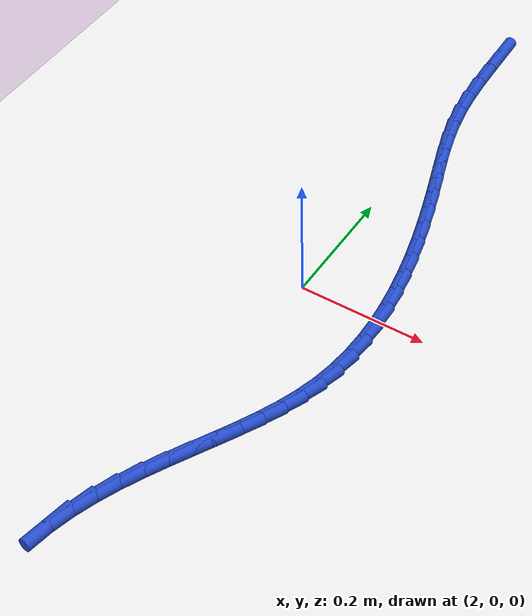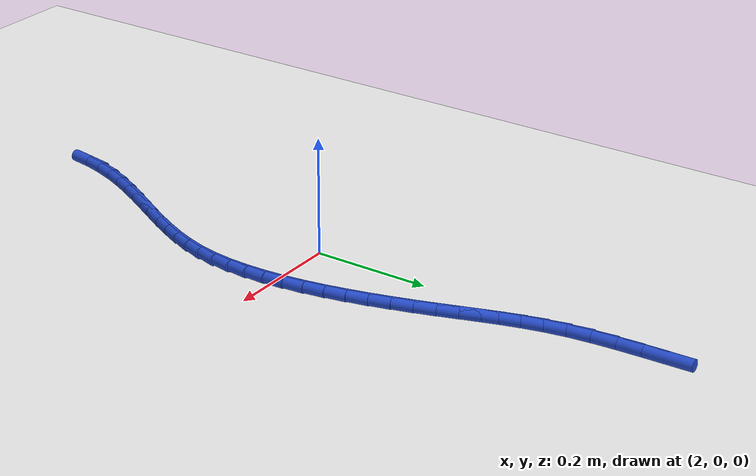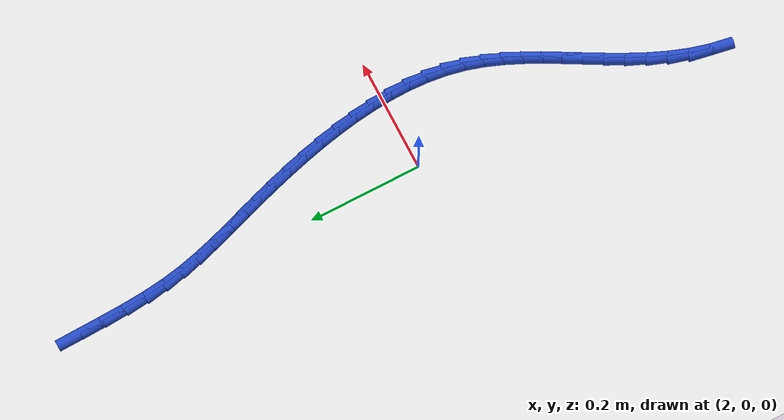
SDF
<sdf version="1.6">
 <world name="default">
  <model name="ground_plane">
   <static>1</static>
   <link name="link">
    <collision name="collision">
     <geometry><plane><normal>0 0 1</normal><size>100 100</size></plane></geometry>
     <surface><friction><ode><mu>100</mu><mu2>50</mu2></ode></friction></surface>
    </collision>
    <visual name="visual">
     <cast_shadows>0</cast_shadows>
     <geometry><plane><normal>0 0 1</normal><size>100 100</size></plane></geometry>
     <material>
      <script><uri>file://media/materials/scripts/gazebo.material</uri><name>Gazebo/WhiteGlow</name></script>
     </material>
    </visual>
   </link>
  </model>
  <model name="line">
   <link name="link_89">
    <pose>2.0033191513486885 0.6238732817404853 0.01 0 1.57 -1.5410313327814171</pose>
    <collision name="collision">
     <geometry><cylinder><radius>0.01</radius><length>0.08</length></cylinder></geometry>
    </collision>
    <visual name="visual">
     <material>
      <script><name>Gazebo/Blue</name><uri>file://media/materials/scripts/gazebo.material</uri></script>
     </material>
     <geometry><cylinder><radius>0.01</radius><length>0.08</length></cylinder></geometry>
    </visual>
   </link>
   <link name="link_90">
    <pose>2.0045568049236273 0.5823047179755485 0.01 0 1.57 -1.5300464621870478</pose>
    <collision name="collision">
     <geometry><cylinder><radius>0.01</radius><length>0.08</length></cylinder></geometry>
    </collision>
    <visual name="visual">
     <material>
      <script><name>Gazebo/Blue</name><uri>file://media/materials/scripts/gazebo.material</uri></script>
     </material>
     <geometry><cylinder><radius>0.01</radius><length>0.08</length></cylinder></geometry>
    </visual>
   </link>
   <link name="link_91">
    <pose>2.0062380553701327 0.5410697406652095 0.01 0 1.57 -1.5020206234922826</pose>
    <collision name="collision">
     <geometry><cylinder><radius>0.01</radius><length>0.08</length></cylinder></geometry>
    </collision>
    <visual name="visual">
     <material>
      <script><name>Gazebo/Blue</name><uri>file://media/materials/scripts/gazebo.material</uri></script>
     </material>
     <geometry><cylinder><radius>0.01</radius><length>0.08</length></cylinder></geometry>
    </visual>
   </link>
   <link name="link_92">
    <pose>2.008999480562623 0.500981893506523 0.01 0 1.57 -1.4539474165723336</pose>
    <collision name="collision">
     <geometry><cylinder><radius>0.01</radius><length>0.08</length></cylinder></geometry>
    </collision>
    <visual name="visual">
     <material>
      <script><name>Gazebo/Blue</name><uri>file://media/materials/scripts/gazebo.material</uri></script>
     </material>
     <geometry><cylinder><radius>0.01</radius><length>0.08</length></cylinder></geometry>
    </visual>
   </link>
   <link name="link_93">
    <pose>2.013475353188538 0.4628515989381514 0.01 0 1.57 -1.3910265826286867</pose>
    <collision name="collision">
     <geometry><cylinder><radius>0.01</radius><length>0.08</length></cylinder></geometry>
    </collision>
    <visual name="visual">
     <material>
      <script><name>Gazebo/Blue</name><uri>file://media/materials/scripts/gazebo.material</uri></script>
     </material>
     <geometry><cylinder><radius>0.01</radius><length>0.08</length></cylinder></geometry>
    </visual>
   </link>
   <link name="link_94">
    <pose>2.019980428911793 0.4270566484668012 0.01 0 1.57 -1.3336770683223065</pose>
    <collision name="collision">
     <geometry><cylinder><radius>0.01</radius><length>0.08</length></cylinder></geometry>
    </collision>
    <visual name="visual">
     <material>
      <script><name>Gazebo/Blue</name><uri>file://media/materials/scripts/gazebo.material</uri></script>
     </material>
     <geometry><cylinder><radius>0.01</radius><length>0.08</length></cylinder></geometry>
    </visual>
   </link>
   <link name="link_95">
    <pose>2.0281857879008784 0.393103287143242 0.01 0 1.57 -1.2881586921767574</pose>
    <collision name="collision">
     <geometry><cylinder><radius>0.01</radius><length>0.08</length></cylinder></geometry>
    </collision>
    <visual name="visual">
     <material>
      <script><name>Gazebo/Blue</name><uri>file://media/materials/scripts/gazebo.material</uri></script>
     </material>
     <geometry><cylinder><radius>0.01</radius><length>0.08</length></cylinder></geometry>
    </visual>
   </link>
   <link name="link_96">
    <pose>2.0376852229975144 0.3603931117968773 0.01 0 1.57 -1.2575223088086525</pose>
    <collision name="collision">
     <geometry><cylinder><radius>0.01</radius><length>0.08</length></cylinder></geometry>
    </collision>
    <visual name="visual">
     <material>
      <script><name>Gazebo/Blue</name><uri>file://media/materials/scripts/gazebo.material</uri></script>
     </material>
     <geometry><cylinder><radius>0.01</radius><length>0.08</length></cylinder></geometry>
    </visual>
   </link>
   <link name="link_97">
    <pose>2.0480725270434226 0.3283277192571086 0.01 0 1.57 -1.2435477769771517</pose>
    <collision name="collision">
     <geometry><cylinder><radius>0.01</radius><length>0.08</length></cylinder></geometry>
    </collision>
    <visual name="visual">
     <material>
      <script><name>Gazebo/Blue</name><uri>file://media/materials/scripts/gazebo.material</uri></script>
     </material>
     <geometry><cylinder><radius>0.01</radius><length>0.08</length></cylinder></geometry>
    </visual>
   </link>
   <link name="link_98">
    <pose>2.058941492880323 0.29630870635333795 0.01 0 1.57 -1.2464422121951575</pose>
    <collision name="collision">
     <geometry><cylinder><radius>0.01</radius><length>0.08</length></cylinder></geometry>
    </collision>
    <visual name="visual">
     <material>
      <script><name>Gazebo/Blue</name><uri>file://media/materials/scripts/gazebo.material</uri></script>
     </material>
     <geometry><cylinder><radius>0.01</radius><length>0.08</length></cylinder></geometry>
    </visual>
   </link>
   <link name="link_99">
    <pose>2.0698888406484826 0.2637494755197809 0.01 0 1.57 -1.2601883920657848</pose>
    <collision name="collision">
     <geometry><cylinder><radius>0.01</radius><length>0.08</length></cylinder></geometry>
    </collision>
    <visual name="visual">
     <material>
      <script><name>Gazebo/Blue</name><uri>file://media/materials/scripts/gazebo.material</uri></script>
     </material>
     <geometry><cylinder><radius>0.01</radius><length>0.08</length></cylinder></geometry>
    </visual>
   </link>
   <link name="link_100">
    <pose>2.0805944008312887 0.23039860780381244 0.01 0 1.57 -1.278507776061584</pose>
    <collision name="collision">
     <geometry><cylinder><radius>0.01</radius><length>0.08</length></cylinder></geometry>
    </collision>
    <visual name="visual">
     <material>
      <script><name>Gazebo/Blue</name><uri>file://media/materials/scripts/gazebo.material</uri></script>
     </material>
     <geometry><cylinder><radius>0.01</radius><length>0.08</length></cylinder></geometry>
    </visual>
   </link>
   <link name="link_101">
    <pose>2.090830960898861 0.19637957373977924 0.01 0 1.57 -1.3012015273214301</pose>
    <collision name="collision">
     <geometry><cylinder><radius>0.01</radius><length>0.08</length></cylinder></geometry>
    </collision>
    <visual name="visual">
     <material>
      <script><name>Gazebo/Blue</name><uri>file://media/materials/scripts/gazebo.material</uri></script>
     </material>
     <geometry><cylinder><radius>0.01</radius><length>0.08</length></cylinder></geometry>
    </visual>
   </link>
   <link name="link_102">
    <pose>2.1003762126913124 0.16183562286753214 0.01 0 1.57 -1.3285080479199194</pose>
    <collision name="collision">
     <geometry><cylinder><radius>0.01</radius><length>0.08</length></cylinder></geometry>
    </collision>
    <visual name="visual">
     <material>
      <script><name>Gazebo/Blue</name><uri>file://media/materials/scripts/gazebo.material</uri></script>
     </material>
     <geometry><cylinder><radius>0.01</radius><length>0.08</length></cylinder></geometry>
    </visual>
   </link>
   <link name="link_103">
    <pose>2.1090078480487584 0.1269100047269208 0.01 0 1.57 -1.3607755931710928</pose>
    <collision name="collision">
     <geometry><cylinder><radius>0.01</radius><length>0.08</length></cylinder></geometry>
    </collision>
    <visual name="visual">
     <material>
      <script><name>Gazebo/Blue</name><uri>file://media/materials/scripts/gazebo.material</uri></script>
     </material>
     <geometry><cylinder><radius>0.01</radius><length>0.08</length></cylinder></geometry>
    </visual>
   </link>
   <link name="link_104">
    <pose>2.1165035588113135 0.09174596885779523 0.01 0 1.57 -1.3984556903592302</pose>
    <collision name="collision">
     <geometry><cylinder><radius>0.01</radius><length>0.08</length></cylinder></geometry>
    </collision>
    <visual name="visual">
     <material>
      <script><name>Gazebo/Blue</name><uri>file://media/materials/scripts/gazebo.material</uri></script>
     </material>
     <geometry><cylinder><radius>0.01</radius><length>0.08</length></cylinder></geometry>
    </visual>
   </link>
   <link name="link_105">
    <pose>2.1226410368190924 0.05648676480000553 0.01 0 1.57 -1.4420941394391793</pose>
    <collision name="collision">
     <geometry><cylinder><radius>0.01</radius><length>0.08</length></cylinder></geometry>
    </collision>
    <visual name="visual">
     <material>
      <script><name>Gazebo/Blue</name><uri>file://media/materials/scripts/gazebo.material</uri></script>
     </material>
     <geometry><cylinder><radius>0.01</radius><length>0.08</length></cylinder></geometry>
    </visual>
   </link>
   <link name="link_106">
    <pose>2.12719797391221 0.021275642093400826 0.01 0 1.57 -1.4923141032201732</pose>
    <collision name="collision">
     <geometry><cylinder><radius>0.01</radius><length>0.08</length></cylinder></geometry>
    </collision>
    <visual name="visual">
     <material>
      <script><name>Gazebo/Blue</name><uri>file://media/materials/scripts/gazebo.material</uri></script>
     </material>
     <geometry><cylinder><radius>0.01</radius><length>0.08</length></cylinder></geometry>
    </visual>
   </link>
   <link name="link_107">
    <pose>2.129952061930781 -0.013744149722167122 0.01 0 1.57 -1.5497838124894354</pose>
    <collision name="collision">
     <geometry><cylinder><radius>0.01</radius><length>0.08</length></cylinder></geometry>
    </collision>
    <visual name="visual">
     <material>
      <script><name>Gazebo/Blue</name><uri>file://media/materials/scripts/gazebo.material</uri></script>
     </material>
     <geometry><cylinder><radius>0.01</radius><length>0.08</length></cylinder></geometry>
    </visual>
   </link>
   <link name="link_108">
    <pose>2.1306809927149195 -0.04842936110684916 0.01 0 1.57 1.5264334371312756</pose>
    <collision name="collision">
     <geometry><cylinder><radius>0.01</radius><length>0.08</length></cylinder></geometry>
    </collision>
    <visual name="visual">
     <material>
      <script><name>Gazebo/Blue</name><uri>file://media/materials/scripts/gazebo.material</uri></script>
     </material>
     <geometry><cylinder><radius>0.01</radius><length>0.08</length></cylinder></geometry>
    </visual>
   </link>
   <link name="link_109">
    <pose>2.1291624581047404 -0.0826367425207952 0.01 0 1.57 1.4526017517960457</pose>
    <collision name="collision">
     <geometry><cylinder><radius>0.01</radius><length>0.08</length></cylinder></geometry>
    </collision>
    <visual name="visual">
     <material>
      <script><name>Gazebo/Blue</name><uri>file://media/materials/scripts/gazebo.material</uri></script>
     </material>
     <geometry><cylinder><radius>0.01</radius><length>0.08</length></cylinder></geometry>
    </visual>
   </link>
   <link name="link_110">
    <pose>2.1251741499403574 -0.11622304442415524 0.01 0 1.57 1.37000493904505</pose>
    <collision name="collision">
     <geometry><cylinder><radius>0.01</radius><length>0.08</length></cylinder></geometry>
    </collision>
    <visual name="visual">
     <material>
      <script><name>Gazebo/Blue</name><uri>file://media/materials/scripts/gazebo.material</uri></script>
     </material>
     <geometry><cylinder><radius>0.01</radius><length>0.08</length></cylinder></geometry>
    </visual>
   </link>
   <link name="link_111">
    <pose>2.1184937600618876 -0.1490450172770793 0.01 0 1.57 1.2823902399666465</pose>
    <collision name="collision">
     <geometry><cylinder><radius>0.01</radius><length>0.08</length></cylinder></geometry>
    </collision>
    <visual name="visual">
     <material>
      <script><name>Gazebo/Blue</name><uri>file://media/materials/scripts/gazebo.material</uri></script>
     </material>
     <geometry><cylinder><radius>0.01</radius><length>0.08</length></cylinder></geometry>
    </visual>
   </link>
   <link name="link_112">
    <pose>2.109009931249477 -0.18101178434183218 0.01 0 1.57 1.2062248300356624</pose>
    <collision name="collision">
     <geometry><cylinder><radius>0.01</radius><length>0.08</length></cylinder></geometry>
    </collision>
    <visual name="visual">
     <material>
      <script><name>Gazebo/Blue</name><uri>file://media/materials/scripts/gazebo.material</uri></script>
     </material>
     <geometry><cylinder><radius>0.01</radius><length>0.08</length></cylinder></geometry>
    </visual>
   </link>
   <link name="link_113">
    <pose>2.0970859672421525 -0.21225652578783663 0.01 0 1.57 1.1465414883775062</pose>
    <collision name="collision">
     <geometry><cylinder><radius>0.01</radius><length>0.08</length></cylinder></geometry>
    </collision>
    <visual name="visual">
     <material>
      <script><name>Gazebo/Blue</name><uri>file://media/materials/scripts/gazebo.material</uri></script>
     </material>
     <geometry><cylinder><radius>0.01</radius><length>0.08</length></cylinder></geometry>
    </visual>
   </link>
   <link name="link_114">
    <pose>2.0832120802295577 -0.24297232710094788 0.01 0 1.57 1.1033738308414942</pose>
    <collision name="collision">
     <geometry><cylinder><radius>0.01</radius><length>0.08</length></cylinder></geometry>
    </collision>
    <visual name="visual">
     <material>
      <script><name>Gazebo/Blue</name><uri>file://media/materials/scripts/gazebo.material</uri></script>
     </material>
     <geometry><cylinder><radius>0.01</radius><length>0.08</length></cylinder></geometry>
    </visual>
   </link>
   <link name="link_115">
    <pose>2.0678784837359845 -0.2733522743970209 0.01 0 1.57 1.0763030191677592</pose>
    <collision name="collision">
     <geometry><cylinder><radius>0.01</radius><length>0.08</length></cylinder></geometry>
    </collision>
    <visual name="visual">
     <material>
      <script><name>Gazebo/Blue</name><uri>file://media/materials/scripts/gazebo.material</uri></script>
     </material>
     <geometry><cylinder><radius>0.01</radius><length>0.08</length></cylinder></geometry>
    </visual>
   </link>
   <link name="link_116">
    <pose>2.051575391285724 -0.30358945379191044 0.01 0 1.57 1.0648089434681711</pose>
    <collision name="collision">
     <geometry><cylinder><radius>0.01</radius><length>0.08</length></cylinder></geometry>
    </collision>
    <visual name="visual">
     <material>
      <script><name>Gazebo/Blue</name><uri>file://media/materials/scripts/gazebo.material</uri></script>
     </material>
     <geometry><cylinder><radius>0.01</radius><length>0.08</length></cylinder></geometry>
    </visual>
   </link>
   <link name="link_117">
    <pose>2.0347930164030674 -0.33387695140147144 0.01 0 1.57 1.068470086640906</pose>
    <collision name="collision">
     <geometry><cylinder><radius>0.01</radius><length>0.08</length></cylinder></geometry>
    </collision>
    <visual name="visual">
     <material>
      <script><name>Gazebo/Blue</name><uri>file://media/materials/scripts/gazebo.material</uri></script>
     </material>
     <geometry><cylinder><radius>0.01</radius><length>0.08</length></cylinder></geometry>
    </visual>
   </link>
   <link name="link_118">
    <pose>2.0180215726123047 -0.36440785334155873 0.01 0 1.57 1.0870350151426345</pose>
    <collision name="collision">
     <geometry><cylinder><radius>0.01</radius><length>0.08</length></cylinder></geometry>
    </collision>
    <visual name="visual">
     <material>
      <script><name>Gazebo/Blue</name><uri>file://media/materials/scripts/gazebo.material</uri></script>
     </material>
     <geometry><cylinder><radius>0.01</radius><length>0.08</length></cylinder></geometry>
    </visual>
   </link>
   <link name="link_119">
    <pose>2.0017512734377276 -0.39537524572802785 0.01 0 1.57 1.1203892943114047</pose>
    <collision name="collision">
     <geometry><cylinder><radius>0.01</radius><length>0.08</length></cylinder></geometry>
    </collision>
    <visual name="visual">
     <material>
      <script><name>Gazebo/Blue</name><uri>file://media/materials/scripts/gazebo.material</uri></script>
     </material>
     <geometry><cylinder><radius>0.01</radius><length>0.08</length></cylinder></geometry>
    </visual>
   </link>
   <link name="link_120">
    <pose>1.9864723324036269 -0.4269722146767322 0.01 0 1.57 1.1684287049499396</pose>
    <collision name="collision">
     <geometry><cylinder><radius>0.01</radius><length>0.08</length></cylinder></geometry>
    </collision>
    <visual name="visual">
     <material>
      <script><name>Gazebo/Blue</name><uri>file://media/materials/scripts/gazebo.material</uri></script>
     </material>
     <geometry><cylinder><radius>0.01</radius><length>0.08</length></cylinder></geometry>
    </visual>
   </link>
   <link name="link_121">
    <pose>1.9726749630342946 -0.45939184630352753 0.01 0 1.57 1.2308426578453053</pose>
    <collision name="collision">
     <geometry><cylinder><radius>0.01</radius><length>0.08</length></cylinder></geometry>
    </collision>
    <visual name="visual">
     <material>
      <script><name>Gazebo/Blue</name><uri>file://media/materials/scripts/gazebo.material</uri></script>
     </material>
     <geometry><cylinder><radius>0.01</radius><length>0.08</length></cylinder></geometry>
    </visual>
   </link>
   <link name="link_122">
    <pose>1.9608493788540207 -0.49282722672426854 0.01 0 1.57 1.3068249629030368</pose>
    <collision name="collision">
     <geometry><cylinder><radius>0.01</radius><length>0.08</length></cylinder></geometry>
    </collision>
    <visual name="visual">
     <material>
      <script><name>Gazebo/Blue</name><uri>file://media/materials/scripts/gazebo.material</uri></script>
     </material>
     <geometry><cylinder><radius>0.01</radius><length>0.08</length></cylinder></geometry>
    </visual>
   </link>
   <link name="link_123">
    <pose>1.9514857933870957 -0.52747144205481 0.01 0 1.57 1.394771421509894</pose>
    <collision name="collision">
     <geometry><cylinder><radius>0.01</radius><length>0.08</length></cylinder></geometry>
    </collision>
    <visual name="visual">
     <material>
      <script><name>Gazebo/Blue</name><uri>file://media/materials/scripts/gazebo.material</uri></script>
     </material>
     <geometry><cylinder><radius>0.01</radius><length>0.08</length></cylinder></geometry>
    </visual>
   </link>
  </model>
 </world>
</sdf>
